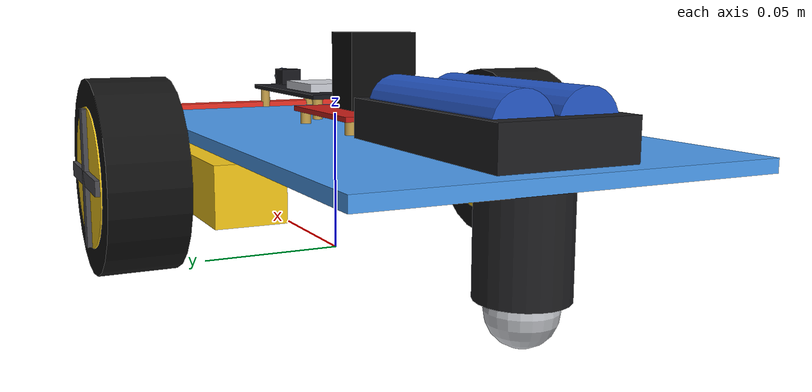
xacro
<?xml version="1.0"?>
<robot name="yoruba_robot" xmlns:xacro="http://ros.org/wiki/xacro">

  <xacro:arg name="prefix"  default=""/>
  <xacro:arg name="use_sim" default="false"/>
  <xacro:property name="p" value="$(arg prefix)"/>

  <!-- ===== measured dimensions (metres). Keep wheel_radius / wheel_separation
       equal to robot_bridge's wheel_radius / wheel_separation parameters. ===== -->
  <xacro:property name="wheel_radius"     value="0.0325"/>  <!-- 65 mm TT wheel -->
  <xacro:property name="wheel_width"      value="0.026"/>
  <xacro:property name="wheel_separation" value="0.150"/>   <!-- tyre centre to tyre centre -->
  <xacro:property name="plate_length"     value="0.200"/>
  <xacro:property name="plate_width"      value="0.120"/>
  <xacro:property name="plate_thickness"  value="0.004"/>
  <xacro:property name="plate_x"          value="-0.045"/>  <!-- plate centre behind the axle -->
  <xacro:property name="plate_bottom_z"   value="0.0125"/>  <!-- above the axle: motor + bracket -->
  <xacro:property name="motor_size_x"     value="0.065"/>
  <xacro:property name="motor_size_y"     value="0.0225"/>
  <xacro:property name="motor_size_z"     value="0.019"/>
  <xacro:property name="motor_x"          value="-0.020"/>  <!-- shaft sits near the motor's front -->
  <xacro:property name="caster_radius"    value="0.010"/>
  <xacro:property name="caster_x"         value="-0.120"/>  <!-- negative = rear caster -->

  <xacro:property name="plate_top_z"      value="${plate_bottom_z + plate_thickness}"/>
  <xacro:property name="motor_y"          value="${wheel_separation/2 - wheel_width/2 - motor_size_y/2 - 0.001}"/>
  <xacro:property name="PI_2"             value="1.5707963267948966"/>

  <!-- ===== materials: defined once, referenced by name ===== -->
  <material name="acrylic">     <color rgba="0.30 0.62 0.95 0.92"/></material>
  <material name="tt_yellow">   <color rgba="0.98 0.80 0.10 1.0"/></material>
  <material name="tyre_black">  <color rgba="0.07 0.07 0.07 1.0"/></material>
  <material name="spoke_grey">  <color rgba="0.30 0.30 0.32 1.0"/></material>
  <material name="caster_metal"><color rgba="0.75 0.76 0.78 1.0"/></material>
  <material name="holder_black"><color rgba="0.12 0.12 0.13 1.0"/></material>
  <material name="cell_blue">   <color rgba="0.15 0.35 0.80 1.0"/></material>
  <material name="pcb_red">     <color rgba="0.80 0.12 0.10 1.0"/></material>
  <material name="pcb_black">   <color rgba="0.10 0.10 0.12 1.0"/></material>
  <material name="heatsink">    <color rgba="0.05 0.05 0.05 1.0"/></material>
  <material name="shield_silver"><color rgba="0.82 0.83 0.86 1.0"/></material>
  <material name="lens_glass">  <color rgba="0.20 0.25 0.35 1.0"/></material>
  <material name="front_red">   <color rgba="0.95 0.20 0.15 1.0"/></material>
  <material name="brass">       <color rgba="0.80 0.65 0.30 1.0"/></material>

  <!-- ===== inertia helpers (solid box / solid cylinder about its own axis) ===== -->
  <xacro:macro name="box_inertia" params="m x y z *origin">
    <inertial>
      <xacro:insert_block name="origin"/>
      <mass value="${m}"/>
      <inertia ixx="${m*(y*y+z*z)/12}" iyy="${m*(x*x+z*z)/12}" izz="${m*(x*x+y*y)/12}"
               ixy="0" ixz="0" iyz="0"/>
    </inertial>
  </xacro:macro>
  <xacro:macro name="cylinder_inertia_y" params="m r h">  <!-- axis along y -->
    <inertial>
      <origin xyz="0 0 0"/>
      <mass value="${m}"/>
      <inertia ixx="${m*(3*r*r+h*h)/12}" iyy="${m*r*r/2}" izz="${m*(3*r*r+h*h)/12}"
               ixy="0" ixz="0" iyz="0"/>
    </inertial>
  </xacro:macro>
  <xacro:macro name="fixed_part" params="name x y z">
    <joint name="${name}_joint" type="fixed">
      <parent link="${p}base_link"/>
      <child link="${p}${name}"/>
      <origin xyz="${x} ${y} ${z}"/>
    </joint>
  </xacro:macro>

  <!-- Four brass standoffs under a board, from the plate top (at local
       z = -height) up to the board's underside (local z = 0). -->
  <xacro:macro name="standoffs" params="sx sy height">
    <xacro:property name="standoff_len" value="${height - 0.0008}"/>
    <visual><origin xyz="${ sx}  ${ sy} ${-0.0008 - standoff_len/2}"/>
      <geometry><cylinder radius="0.0018" length="${standoff_len}"/></geometry><material name="brass"/></visual>
    <visual><origin xyz="${ sx}  ${-sy} ${-0.0008 - standoff_len/2}"/>
      <geometry><cylinder radius="0.0018" length="${standoff_len}"/></geometry><material name="brass"/></visual>
    <visual><origin xyz="${-sx}  ${ sy} ${-0.0008 - standoff_len/2}"/>
      <geometry><cylinder radius="0.0018" length="${standoff_len}"/></geometry><material name="brass"/></visual>
    <visual><origin xyz="${-sx}  ${-sy} ${-0.0008 - standoff_len/2}"/>
      <geometry><cylinder radius="0.0018" length="${standoff_len}"/></geometry><material name="brass"/></visual>
  </xacro:macro>

  <!-- ===== base ===== -->
  <link name="${p}base_footprint"/>
  <joint name="base_footprint_joint" type="fixed">
    <parent link="${p}base_footprint"/>
    <child link="${p}base_link"/>
    <origin xyz="0 0 ${wheel_radius}"/>
  </joint>
  <!-- base_link is the axle centre. Tiny mass so it is a valid physics body;
       the real masses live on the parts. -->
  <link name="${p}base_link">
    <xacro:box_inertia m="0.005" x="0.01" y="0.01" z="0.01"><origin xyz="0 0 0"/></xacro:box_inertia>
  </link>

  <!-- ===== the flat chassis plate ===== -->
  <xacro:fixed_part name="chassis_plate" x="${plate_x}" y="0" z="${plate_bottom_z + plate_thickness/2}"/>
  <link name="${p}chassis_plate">
    <visual>
      <geometry><box size="${plate_length} ${plate_width} ${plate_thickness}"/></geometry>
      <material name="acrylic"/>
    </visual>
    <!-- red strip on the front edge: shows heading at a glance -->
    <visual>
      <origin xyz="${plate_length/2 - 0.003} 0 ${plate_thickness/2 + 0.001}"/>
      <geometry><box size="0.006 ${plate_width*0.8} 0.002"/></geometry>
      <material name="front_red"/>
    </visual>
    <collision>
      <geometry><box size="${plate_length} ${plate_width} ${plate_thickness}"/></geometry>
    </collision>
    <xacro:box_inertia m="0.080" x="${plate_length}" y="${plate_width}" z="${plate_thickness}">
      <origin xyz="0 0 0"/></xacro:box_inertia>
  </link>

  <!-- ===== TT gear motors (under the plate, beside each wheel) ===== -->
  <xacro:macro name="motor" params="side y_sign">
    <xacro:fixed_part name="${side}_motor" x="${motor_x}" y="${y_sign*motor_y}" z="0"/>
    <link name="${p}${side}_motor">
      <visual>
        <geometry><box size="${motor_size_x} ${motor_size_y} ${motor_size_z}"/></geometry>
        <material name="tt_yellow"/>
      </visual>
      <!-- output shaft stub toward the wheel -->
      <visual>
        <origin xyz="${-motor_x} ${y_sign*(motor_size_y/2 + 0.002)} 0" rpy="${PI_2} 0 0"/>
        <geometry><cylinder radius="0.0027" length="0.004"/></geometry>
        <material name="caster_metal"/>
      </visual>
      <xacro:box_inertia m="0.030" x="${motor_size_x}" y="${motor_size_y}" z="${motor_size_z}">
        <origin xyz="0 0 0"/></xacro:box_inertia>
    </link>
  </xacro:macro>
  <xacro:motor side="left"  y_sign="1"/>
  <xacro:motor side="right" y_sign="-1"/>

  <!-- ===== drive wheels: black tyre, yellow rim, grey spokes on the outer
       face (spokes make rotation visible in RViz) ===== -->
  <xacro:macro name="wheel" params="side y_sign">
    <joint name="${side}_wheel_joint" type="continuous">
      <parent link="${p}base_link"/>
      <child link="${p}${side}_wheel"/>
      <origin xyz="0 ${y_sign*wheel_separation/2} 0"/>
      <axis xyz="0 1 0"/>
    </joint>
    <link name="${p}${side}_wheel">
      <visual>
        <origin rpy="${PI_2} 0 0"/>
        <geometry><cylinder radius="${wheel_radius}" length="${wheel_width}"/></geometry>
        <material name="tyre_black"/>
      </visual>
      <visual>
        <origin rpy="${PI_2} 0 0"/>
        <geometry><cylinder radius="${wheel_radius*0.72}" length="${wheel_width + 0.001}"/></geometry>
        <material name="tt_yellow"/>
      </visual>
      <visual>
        <origin xyz="0 ${y_sign*(wheel_width/2 + 0.001)} 0"/>
        <geometry><box size="${wheel_radius*1.4} 0.002 0.005"/></geometry>
        <material name="spoke_grey"/>
      </visual>
      <visual>
        <origin xyz="0 ${y_sign*(wheel_width/2 + 0.001)} 0"/>
        <geometry><box size="0.005 0.002 ${wheel_radius*1.4}"/></geometry>
        <material name="spoke_grey"/>
      </visual>
      <collision>
        <origin rpy="${PI_2} 0 0"/>
        <geometry><cylinder radius="${wheel_radius}" length="${wheel_width}"/></geometry>
      </collision>
      <xacro:cylinder_inertia_y m="0.025" r="${wheel_radius}" h="${wheel_width}"/>
    </link>
  </xacro:macro>
  <xacro:wheel side="left"  y_sign="1"/>
  <xacro:wheel side="right" y_sign="-1"/>

  <!-- ===== rear ball caster: metal housing from the plate down, ball touching
       the ground (ball bottom at z = 0 in base_footprint) ===== -->
  <xacro:property name="caster_z" value="${-wheel_radius + caster_radius}"/>
  <xacro:property name="housing_len" value="${plate_bottom_z - caster_z - 0.003}"/>
  <xacro:fixed_part name="caster_wheel" x="${caster_x}" y="0" z="${caster_z}"/>
  <link name="${p}caster_wheel">
    <visual>
      <geometry><sphere radius="${caster_radius}"/></geometry>
      <material name="caster_metal"/>
    </visual>
    <visual>
      <origin xyz="0 0 ${0.003 + housing_len/2}"/>
      <geometry><cylinder radius="${caster_radius*1.3}" length="${housing_len}"/></geometry>
      <material name="holder_black"/>
    </visual>
    <collision>
      <geometry><sphere radius="${caster_radius}"/></geometry>
    </collision>
    <xacro:box_inertia m="0.010" x="0.02" y="0.02" z="0.02"><origin xyz="0 0 0"/></xacro:box_inertia>
  </link>

  <!-- ===== on top of the plate (z measured from base_link) ===== -->
  <!-- 2x18650 battery holder at the rear -->
  <xacro:fixed_part name="battery" x="-0.100" y="0" z="${plate_top_z + 0.006}"/>
  <link name="${p}battery">
    <visual>
      <geometry><box size="0.077 0.041 0.012"/></geometry>
      <material name="holder_black"/>
    </visual>
    <visual>
      <origin xyz="0 0.0095 0.004" rpy="0 ${PI_2} 0"/>
      <geometry><cylinder radius="0.009" length="0.065"/></geometry>
      <material name="cell_blue"/>
    </visual>
    <visual>
      <origin xyz="0 -0.0095 0.004" rpy="0 ${PI_2} 0"/>
      <geometry><cylinder radius="0.009" length="0.065"/></geometry>
      <material name="cell_blue"/>
    </visual>
    <xacro:box_inertia m="0.110" x="0.077" y="0.041" z="0.021"><origin xyz="0 0 0.004"/></xacro:box_inertia>
  </link>

  <!-- L298N dual H-bridge: red PCB on standoffs + black heatsink -->
  <xacro:fixed_part name="motor_driver" x="-0.036" y="0" z="${plate_top_z + 0.005}"/>
  <link name="${p}motor_driver">
    <visual>
      <geometry><box size="0.043 0.043 0.0016"/></geometry>
      <material name="pcb_red"/>
    </visual>
    <visual>
      <origin xyz="0.004 0 0.0133"/>
      <geometry><box size="0.016 0.023 0.025"/></geometry>
      <material name="heatsink"/>
    </visual>
    <xacro:standoffs sx="0.0185" sy="0.0185" height="0.005"/>
    <xacro:box_inertia m="0.030" x="0.043" y="0.043" z="0.027"><origin xyz="0 0 0.008"/></xacro:box_inertia>
  </link>

  <!-- ESP32-S3 board at the front: black PCB, silver module shield, camera
       lens facing forward -->
  <xacro:fixed_part name="controller" x="0.022" y="0" z="${plate_top_z + 0.008}"/>
  <link name="${p}controller">
    <visual>
      <geometry><box size="0.0635 0.0254 0.0016"/></geometry>
      <material name="pcb_black"/>
    </visual>
    <visual>
      <origin xyz="-0.008 0 0.0023"/>
      <geometry><box size="0.025 0.018 0.003"/></geometry>
      <material name="shield_silver"/>
    </visual>
    <visual>
      <origin xyz="0.027 0 0.004"/>
      <geometry><box size="0.008 0.008 0.006"/></geometry>
      <material name="pcb_black"/>
    </visual>
    <visual>
      <origin xyz="0.0325 0 0.004" rpy="0 ${PI_2} 0"/>
      <geometry><cylinder radius="0.0032" length="0.003"/></geometry>
      <material name="lens_glass"/>
    </visual>
    <xacro:standoffs sx="0.028" sy="0.0095" height="0.008"/>
    <xacro:box_inertia m="0.010" x="0.0635" y="0.0254" z="0.008"><origin xyz="0 0 0.002"/></xacro:box_inertia>
  </link>

  <!-- ===== Gazebo only ===== -->
  <xacro:if value="$(arg use_sim)">
    <gazebo reference="left_wheel"><mu1>1.0</mu1><mu2>1.0</mu2></gazebo>
    <gazebo reference="right_wheel"><mu1>1.0</mu1><mu2>1.0</mu2></gazebo>
    <gazebo reference="caster_wheel"><mu1>0.0</mu1><mu2>0.0</mu2></gazebo>

    <gazebo>
      <plugin filename="gz-sim-diff-drive-system" name="gz::sim::systems::DiffDrive">
        <left_joint>left_wheel_joint</left_joint>
        <right_joint>right_wheel_joint</right_joint>
        <wheel_separation>${wheel_separation}</wheel_separation>
        <wheel_radius>${wheel_radius}</wheel_radius>
        <max_linear_acceleration>2.3</max_linear_acceleration>  <!-- firmware RAMP_MS 150: 0.35 m/s in 0.15 s -->
        <max_angular_acceleration>23</max_angular_acceleration>
        <odom_publish_frequency>50</odom_publish_frequency>
        <topic>/cmd_vel_applied</topic>
        <odom_topic>/sim_odom</odom_topic>
        <frame_id>odom</frame_id>
        <child_frame_id>sim_base_footprint</child_frame_id>
        <tf_topic>/sim_tf</tf_topic>
      </plugin>
      <plugin filename="gz-sim-joint-state-publisher-system"
              name="gz::sim::systems::JointStatePublisher">
        <joint_name>left_wheel_joint</joint_name>
        <joint_name>right_wheel_joint</joint_name>
      </plugin>
    </gazebo>
  </xacro:if>
</robot>
